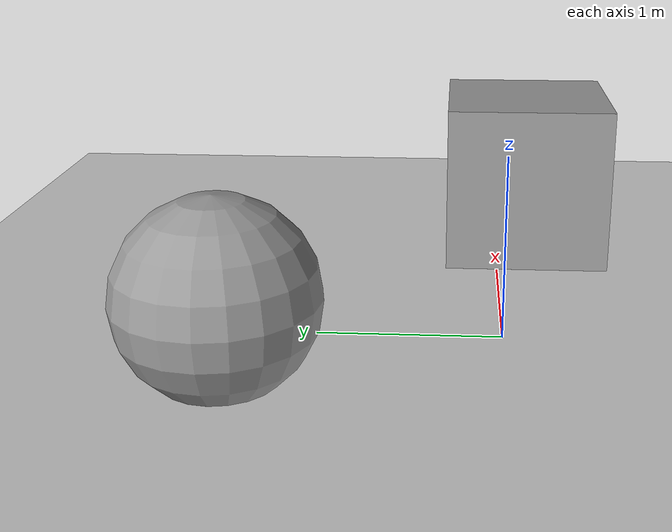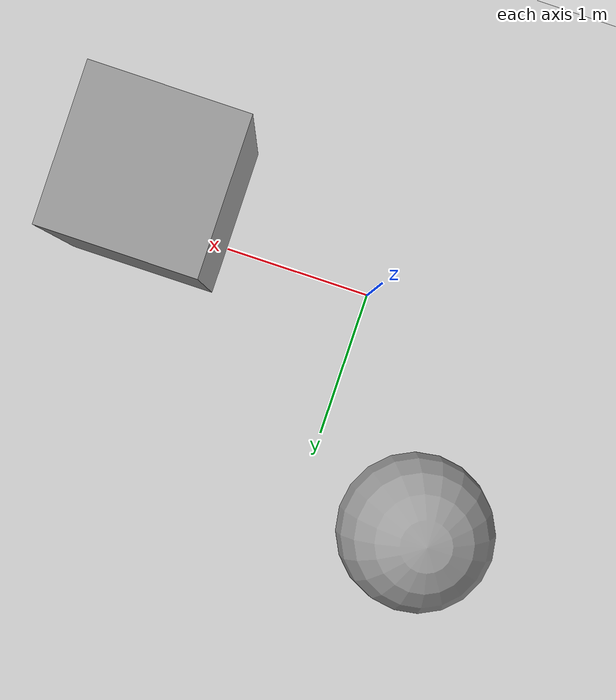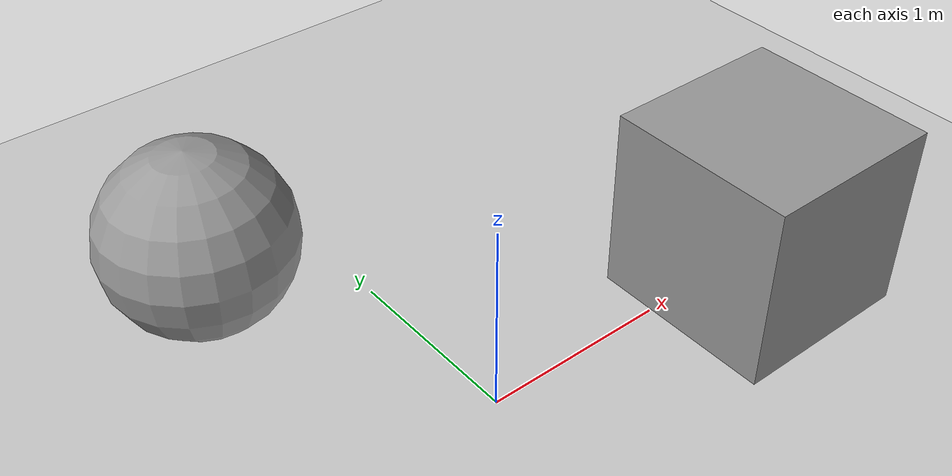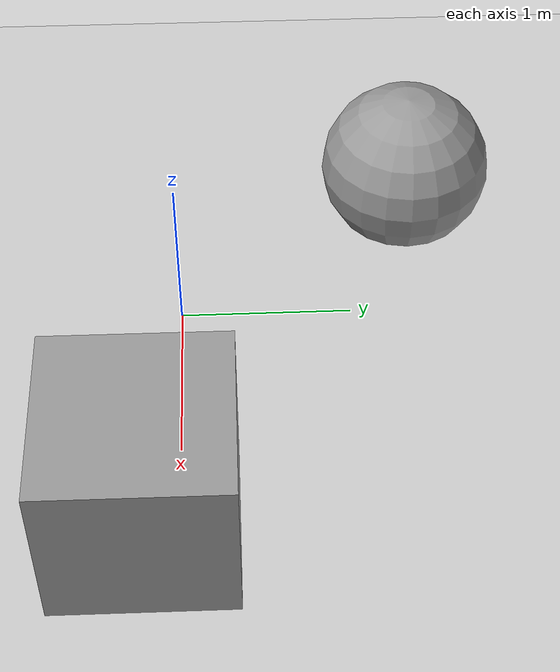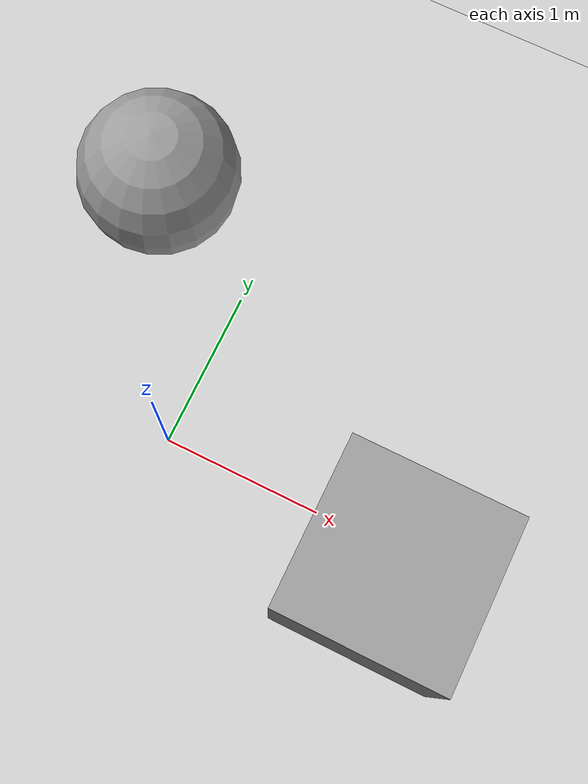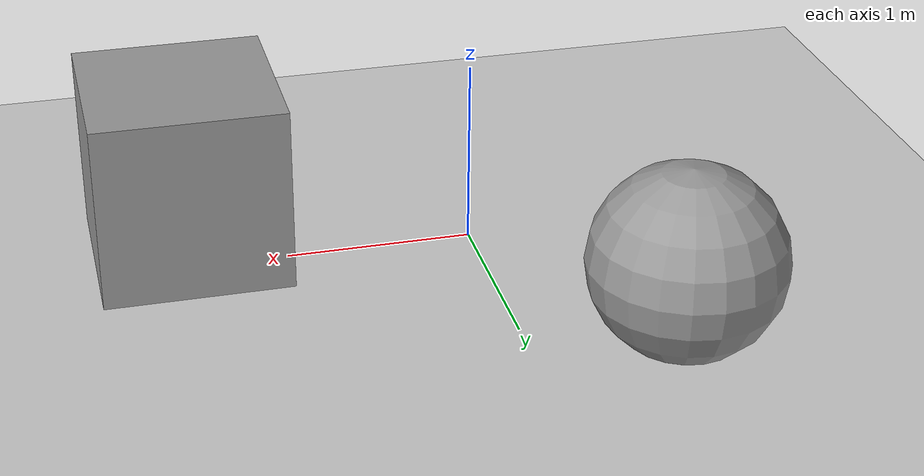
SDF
<sdf version="1.10">
 <world name="my_world">
  <physics name="1ms" type="ignored">
   <max_step_size>0.001</max_step_size>
   <real_time_factor>1</real_time_factor>
   <real_time_update_rate>1000</real_time_update_rate>
  </physics>
  <plugin name="gz::sim::systems::Physics" filename="gz-sim-physics-system"/>
  <plugin name="gz::sim::systems::UserCommands" filename="gz-sim-user-commands-system"/>
  <plugin name="gz::sim::systems::SceneBroadcaster" filename="gz-sim-scene-broadcaster-system"/>
  <plugin name="gz::sim::systems::Imu" filename="gz-sim-imu-system"/>
  <plugin name="gz::sim::systems::Sensors" filename="gz-sim-sensors-system">
   <render_engine>ogre2</render_engine>
  </plugin>
  <gravity>0 0 -9.8000000000000007</gravity>
  <magnetic_field>6.0000000000000002e-06 2.3e-05 -4.1999999999999998e-05</magnetic_field>
  <atmosphere type="adiabatic"/>
  <physics type="ode">
   <max_step_size>0.001</max_step_size>
   <real_time_factor>1</real_time_factor>
   <real_time_update_rate>1000</real_time_update_rate>
  </physics>
  <scene>
   <ambient>0.400000006 0.400000006 0.400000006 1</ambient>
   <background>0.699999988 0.699999988 0.699999988 1</background>
   <shadows>true</shadows>
  </scene>
  <spherical_coordinates>
   <surface_model>EARTH_WGS84</surface_model>
   <latitude_deg>0</latitude_deg>
   <longitude_deg>0</longitude_deg>
   <elevation>0</elevation>
   <heading_deg>0</heading_deg>
  </spherical_coordinates>
  <model name="ground_plane">
   <static>true</static>
   <link name="link">
    <collision name="collision">
     <geometry><plane><normal>0 0 1</normal><size>100 100</size></plane></geometry>
     <surface><friction><ode><mu>100</mu><mu2>50</mu2></ode></friction></surface>
    </collision>
    <visual name="visual">
     <cast_shadows>false</cast_shadows>
     <geometry><plane><normal>0 0 1</normal><size>100 100</size></plane></geometry>
     <material>
      <script><uri>file://media/materials/scripts/gazebo.material</uri><name>Gazebo/Grey</name></script>
     </material>
    </visual>
    <inertial>
     <mass>1</mass>
     <inertia><ixx>1</ixx><ixy>0</ixy><ixz>0</ixz><iyy>1</iyy><iyz>0</iyz><izz>1</izz></inertia>
    </inertial>
   </link>
  </model>
  <model name="unit_box">
   <pose>1.5127200000000001 -0.181418 0.49999500000000002 0 1.0000000000000001e-05 0</pose>
   <link name="link">
    <inertial>
     <mass>1</mass>
     <inertia>
      <ixx>0.16666700000000001</ixx>
      <ixy>0</ixy>
      <ixz>0</ixz>
      <iyy>0.16666700000000001</iyy>
      <iyz>0</iyz>
      <izz>0.16666700000000001</izz>
     </inertia>
    </inertial>
    <collision name="collision"><geometry><box><size>1 1 1</size></box></geometry></collision>
    <visual name="visual">
     <geometry><box><size>1 1 1</size></box></geometry>
     <material>
      <script><name>Gazebo/Grey</name><uri>file://media/materials/scripts/gazebo.material</uri></script>
     </material>
    </visual>
   </link>
   <static>false</static>
  </model>
  <model name="unit_sphere">
   <pose>-0.72583299999999995 1.36206 0.5 0 0 0</pose>
   <link name="link">
    <inertial>
     <mass>1</mass>
     <inertia>
      <ixx>0.10000000000000001</ixx>
      <ixy>0</ixy>
      <ixz>0</ixz>
      <iyy>0.10000000000000001</iyy>
      <iyz>0</iyz>
      <izz>0.10000000000000001</izz>
     </inertia>
    </inertial>
    <collision name="collision"><geometry><sphere><radius>0.5</radius></sphere></geometry></collision>
    <visual name="visual">
     <geometry><sphere><radius>0.5</radius></sphere></geometry>
     <material>
      <script><name>Gazebo/Grey</name><uri>file://media/materials/scripts/gazebo.material</uri></script>
     </material>
    </visual>
   </link>
   <static>false</static>
  </model>
  <light name="sun" type="directional">
   <pose>0 0 10 0 0 0</pose>
   <intensity>1</intensity>
   <direction>-0.5 0.10000000000000001 -0.90000000000000002</direction>
   <diffuse>0.800000012 0.800000012 0.800000012 1</diffuse>
   <specular>0.200000003 0.200000003 0.200000003 1</specular>
   <attenuation>
    <range>1000</range>
    <linear>0.01</linear>
    <constant>0.90000000000000002</constant>
    <quadratic>0.001</quadratic>
   </attenuation>
   <spot><inner_angle>0</inner_angle><outer_angle>0</outer_angle><falloff>0</falloff></spot>
  </light>
 </world>
</sdf>
